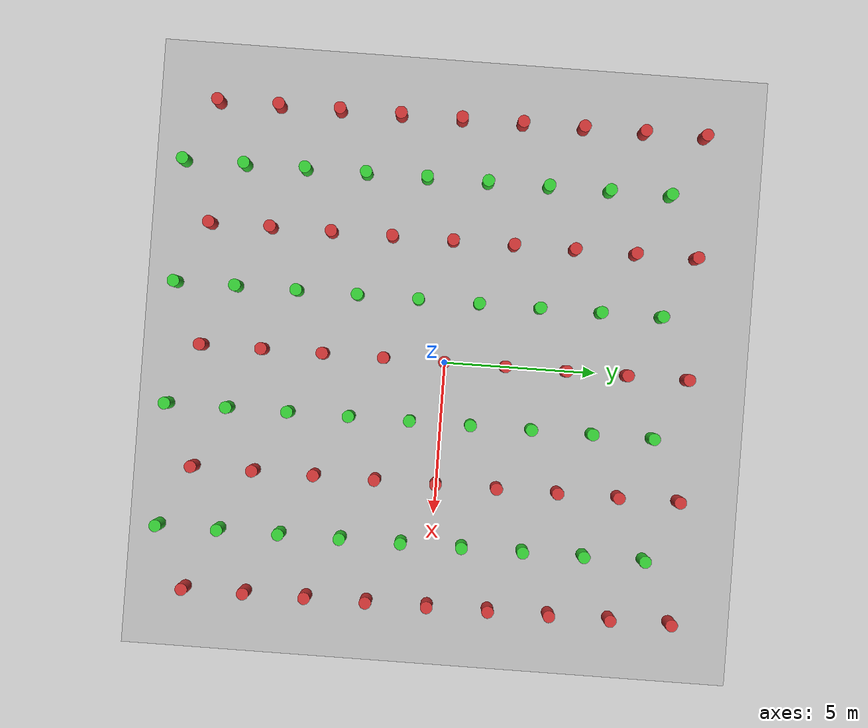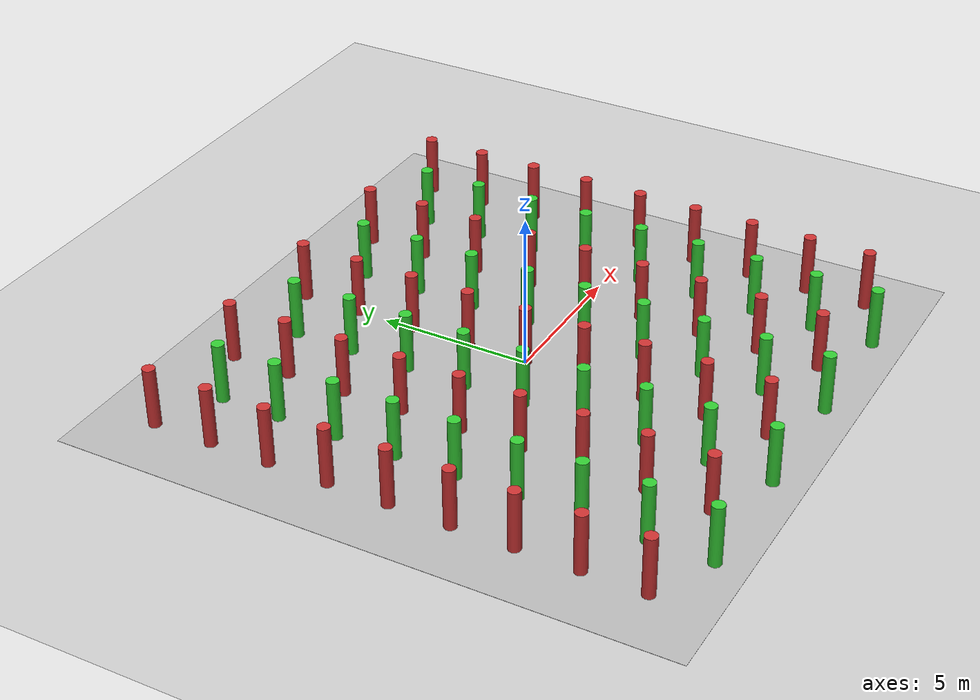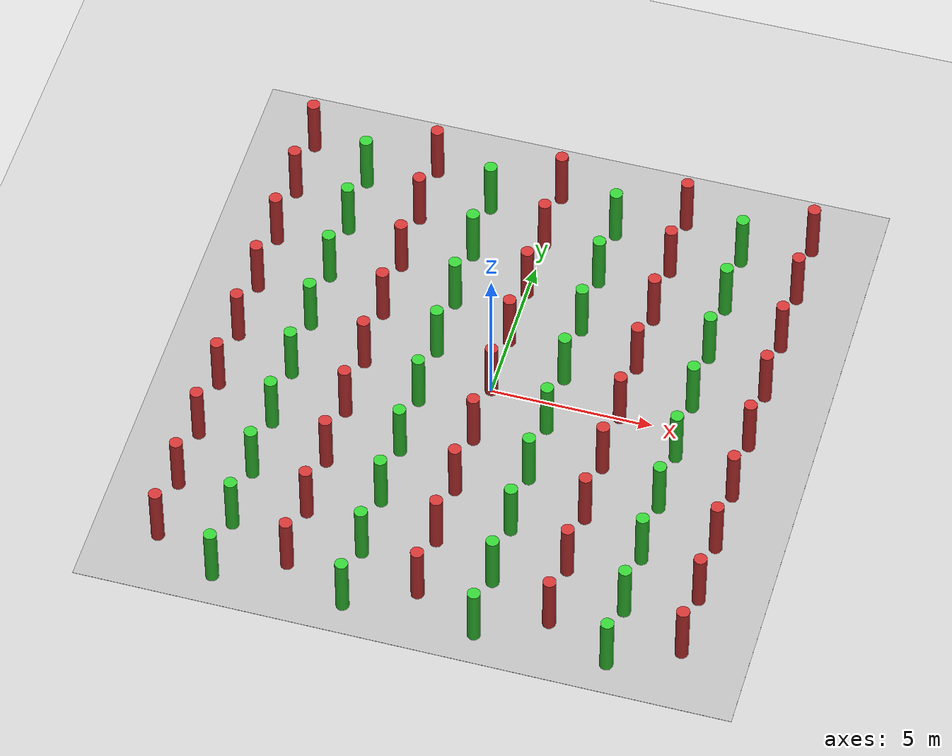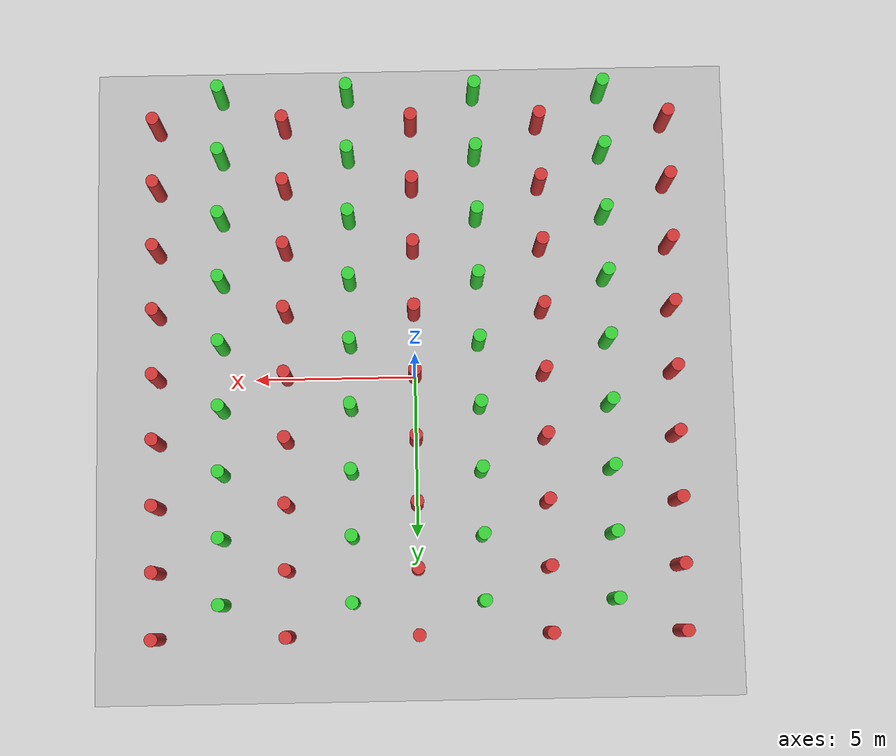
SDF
<sdf version="1.6">
 <world name="planning_test">
  <physics type="ode">
   <gravity>0 0 -9.8066</gravity>
   <ode>
    <solver>
     <type>quick</type>
     <iters>10</iters>
     <sor>1.3</sor>
     <use_dynamic_moi_rescaling>0</use_dynamic_moi_rescaling>
    </solver>
    <constraints>
     <cfm>0.00001</cfm>
     <erp>0.2</erp>
     <contact_max_correcting_vel>1000</contact_max_correcting_vel>
     <contact_surface_layer>0.01</contact_surface_layer>
    </constraints>
   </ode>
   <max_step_size>0.004</max_step_size>
   <real_time_factor>1.0</real_time_factor>
   <real_time_update_rate>250</real_time_update_rate>
   <magnetic_field>6.0e-6 2.3e-5 -4.2e-5</magnetic_field>
  </physics>
  <light type="directional" name="sun">
   <cast_shadows>false</cast_shadows>
   <pose>0 0 100 0 0 0</pose>
   <diffuse>0.8 0.8 0.8 1</diffuse>
   <specular>0.9 0.9 0.9 1</specular>
   <attenuation>
    <range>1000</range>
    <constant>0.9</constant>
    <linear>0.01</linear>
    <quadratic>0.001</quadratic>
   </attenuation>
   <direction>0.2 0.2 -0.9</direction>
  </light>
  <scene><shadows>0</shadows></scene>
  <include><uri>model://ground_plane</uri></include>
  <model name="yundrone_logo">
   <static>true</static>
   <link name="yundrone_logo">
    <visual name="visual">
     <cast_shadows>false</cast_shadows>
     <geometry><box><size>20.0 20.0 0.01</size></box></geometry>
     <material>
      <script><uri>model://yundrone_logo/yundrone_logo.material</uri><name>yundrone_logo</name></script>
     </material>
    </visual>
   </link>
  </model>
  <model name="cylinder_8_-8">
   <pose>8.0 -8.0 1.0 0 0 0</pose>
   <static>true</static>
   <link name="link">
    <collision name="collision">
     <geometry><cylinder><radius>0.2</radius><length>2.0</length></cylinder></geometry>
    </collision>
    <visual name="visual">
     <geometry><cylinder><radius>0.2</radius><length>2.0</length></cylinder></geometry>
     <material><ambient>0.8 0.2 0.2 1</ambient><diffuse>0.8 0.2 0.2 1</diffuse></material>
    </visual>
   </link>
  </model>
  <model name="cylinder_8_-6">
   <pose>8.0 -6.0 1.0 0 0 0</pose>
   <static>true</static>
   <link name="link">
    <collision name="collision">
     <geometry><cylinder><radius>0.2</radius><length>2.0</length></cylinder></geometry>
    </collision>
    <visual name="visual">
     <geometry><cylinder><radius>0.2</radius><length>2.0</length></cylinder></geometry>
     <material><ambient>0.8 0.2 0.2 1</ambient><diffuse>0.8 0.2 0.2 1</diffuse></material>
    </visual>
   </link>
  </model>
  <model name="cylinder_8_-4">
   <pose>8.0 -4.0 1.0 0 0 0</pose>
   <static>true</static>
   <link name="link">
    <collision name="collision">
     <geometry><cylinder><radius>0.2</radius><length>2.0</length></cylinder></geometry>
    </collision>
    <visual name="visual">
     <geometry><cylinder><radius>0.2</radius><length>2.0</length></cylinder></geometry>
     <material><ambient>0.8 0.2 0.2 1</ambient><diffuse>0.8 0.2 0.2 1</diffuse></material>
    </visual>
   </link>
  </model>
  <model name="cylinder_8_-2">
   <pose>8.0 -2.0 1.0 0 0 0</pose>
   <static>true</static>
   <link name="link">
    <collision name="collision">
     <geometry><cylinder><radius>0.2</radius><length>2.0</length></cylinder></geometry>
    </collision>
    <visual name="visual">
     <geometry><cylinder><radius>0.2</radius><length>2.0</length></cylinder></geometry>
     <material><ambient>0.8 0.2 0.2 1</ambient><diffuse>0.8 0.2 0.2 1</diffuse></material>
    </visual>
   </link>
  </model>
  <model name="cylinder_8_0">
   <pose>8.0 0.0 1.0 0 0 0</pose>
   <static>true</static>
   <link name="link">
    <collision name="collision">
     <geometry><cylinder><radius>0.2</radius><length>2.0</length></cylinder></geometry>
    </collision>
    <visual name="visual">
     <geometry><cylinder><radius>0.2</radius><length>2.0</length></cylinder></geometry>
     <material><ambient>0.8 0.2 0.2 1</ambient><diffuse>0.8 0.2 0.2 1</diffuse></material>
    </visual>
   </link>
  </model>
  <model name="cylinder_8_2">
   <pose>8.0 2.0 1.0 0 0 0</pose>
   <static>true</static>
   <link name="link">
    <collision name="collision">
     <geometry><cylinder><radius>0.2</radius><length>2.0</length></cylinder></geometry>
    </collision>
    <visual name="visual">
     <geometry><cylinder><radius>0.2</radius><length>2.0</length></cylinder></geometry>
     <material><ambient>0.8 0.2 0.2 1</ambient><diffuse>0.8 0.2 0.2 1</diffuse></material>
    </visual>
   </link>
  </model>
  <model name="cylinder_8_4">
   <pose>8.0 4.0 1.0 0 0 0</pose>
   <static>true</static>
   <link name="link">
    <collision name="collision">
     <geometry><cylinder><radius>0.2</radius><length>2.0</length></cylinder></geometry>
    </collision>
    <visual name="visual">
     <geometry><cylinder><radius>0.2</radius><length>2.0</length></cylinder></geometry>
     <material><ambient>0.8 0.2 0.2 1</ambient><diffuse>0.8 0.2 0.2 1</diffuse></material>
    </visual>
   </link>
  </model>
  <model name="cylinder_8_6">
   <pose>8.0 6.0 1.0 0 0 0</pose>
   <static>true</static>
   <link name="link">
    <collision name="collision">
     <geometry><cylinder><radius>0.2</radius><length>2.0</length></cylinder></geometry>
    </collision>
    <visual name="visual">
     <geometry><cylinder><radius>0.2</radius><length>2.0</length></cylinder></geometry>
     <material><ambient>0.8 0.2 0.2 1</ambient><diffuse>0.8 0.2 0.2 1</diffuse></material>
    </visual>
   </link>
  </model>
  <model name="cylinder_8_8">
   <pose>8.0 8.0 1.0 0 0 0</pose>
   <static>true</static>
   <link name="link">
    <collision name="collision">
     <geometry><cylinder><radius>0.2</radius><length>2.0</length></cylinder></geometry>
    </collision>
    <visual name="visual">
     <geometry><cylinder><radius>0.2</radius><length>2.0</length></cylinder></geometry>
     <material><ambient>0.8 0.2 0.2 1</ambient><diffuse>0.8 0.2 0.2 1</diffuse></material>
    </visual>
   </link>
  </model>
  <model name="cylinder_6_-9">
   <pose>6.0 -9.0 1.0 0 0 0</pose>
   <static>true</static>
   <link name="link">
    <collision name="collision">
     <geometry><cylinder><radius>0.2</radius><length>2.0</length></cylinder></geometry>
    </collision>
    <visual name="visual">
     <geometry><cylinder><radius>0.2</radius><length>2.0</length></cylinder></geometry>
     <material><ambient>0.2 0.8 0.2 1</ambient><diffuse>0.2 0.8 0.2 1</diffuse></material>
    </visual>
   </link>
  </model>
  <model name="cylinder_6_-7">
   <pose>6.0 -7.0 1.0 0 0 0</pose>
   <static>true</static>
   <link name="link">
    <collision name="collision">
     <geometry><cylinder><radius>0.2</radius><length>2.0</length></cylinder></geometry>
    </collision>
    <visual name="visual">
     <geometry><cylinder><radius>0.2</radius><length>2.0</length></cylinder></geometry>
     <material><ambient>0.2 0.8 0.2 1</ambient><diffuse>0.2 0.8 0.2 1</diffuse></material>
    </visual>
   </link>
  </model>
  <model name="cylinder_6_-5">
   <pose>6.0 -5.0 1.0 0 0 0</pose>
   <static>true</static>
   <link name="link">
    <collision name="collision">
     <geometry><cylinder><radius>0.2</radius><length>2.0</length></cylinder></geometry>
    </collision>
    <visual name="visual">
     <geometry><cylinder><radius>0.2</radius><length>2.0</length></cylinder></geometry>
     <material><ambient>0.2 0.8 0.2 1</ambient><diffuse>0.2 0.8 0.2 1</diffuse></material>
    </visual>
   </link>
  </model>
  <model name="cylinder_6_-3">
   <pose>6.0 -3.0 1.0 0 0 0</pose>
   <static>true</static>
   <link name="link">
    <collision name="collision">
     <geometry><cylinder><radius>0.2</radius><length>2.0</length></cylinder></geometry>
    </collision>
    <visual name="visual">
     <geometry><cylinder><radius>0.2</radius><length>2.0</length></cylinder></geometry>
     <material><ambient>0.2 0.8 0.2 1</ambient><diffuse>0.2 0.8 0.2 1</diffuse></material>
    </visual>
   </link>
  </model>
  <model name="cylinder_6_-1">
   <pose>6.0 -1.0 1.0 0 0 0</pose>
   <static>true</static>
   <link name="link">
    <collision name="collision">
     <geometry><cylinder><radius>0.2</radius><length>2.0</length></cylinder></geometry>
    </collision>
    <visual name="visual">
     <geometry><cylinder><radius>0.2</radius><length>2.0</length></cylinder></geometry>
     <material><ambient>0.2 0.8 0.2 1</ambient><diffuse>0.2 0.8 0.2 1</diffuse></material>
    </visual>
   </link>
  </model>
  <model name="cylinder_6_1">
   <pose>6.0 1.0 1.0 0 0 0</pose>
   <static>true</static>
   <link name="link">
    <collision name="collision">
     <geometry><cylinder><radius>0.2</radius><length>2.0</length></cylinder></geometry>
    </collision>
    <visual name="visual">
     <geometry><cylinder><radius>0.2</radius><length>2.0</length></cylinder></geometry>
     <material><ambient>0.2 0.8 0.2 1</ambient><diffuse>0.2 0.8 0.2 1</diffuse></material>
    </visual>
   </link>
  </model>
  <model name="cylinder_6_3">
   <pose>6.0 3.0 1.0 0 0 0</pose>
   <static>true</static>
   <link name="link">
    <collision name="collision">
     <geometry><cylinder><radius>0.2</radius><length>2.0</length></cylinder></geometry>
    </collision>
    <visual name="visual">
     <geometry><cylinder><radius>0.2</radius><length>2.0</length></cylinder></geometry>
     <material><ambient>0.2 0.8 0.2 1</ambient><diffuse>0.2 0.8 0.2 1</diffuse></material>
    </visual>
   </link>
  </model>
  <model name="cylinder_6_5">
   <pose>6.0 5.0 1.0 0 0 0</pose>
   <static>true</static>
   <link name="link">
    <collision name="collision">
     <geometry><cylinder><radius>0.2</radius><length>2.0</length></cylinder></geometry>
    </collision>
    <visual name="visual">
     <geometry><cylinder><radius>0.2</radius><length>2.0</length></cylinder></geometry>
     <material><ambient>0.2 0.8 0.2 1</ambient><diffuse>0.2 0.8 0.2 1</diffuse></material>
    </visual>
   </link>
  </model>
  <model name="cylinder_6_7">
   <pose>6.0 7.0 1.0 0 0 0</pose>
   <static>true</static>
   <link name="link">
    <collision name="collision">
     <geometry><cylinder><radius>0.2</radius><length>2.0</length></cylinder></geometry>
    </collision>
    <visual name="visual">
     <geometry><cylinder><radius>0.2</radius><length>2.0</length></cylinder></geometry>
     <material><ambient>0.2 0.8 0.2 1</ambient><diffuse>0.2 0.8 0.2 1</diffuse></material>
    </visual>
   </link>
  </model>
  <model name="cylinder_4_-8">
   <pose>4.0 -8.0 1.0 0 0 0</pose>
   <static>true</static>
   <link name="link">
    <collision name="collision">
     <geometry><cylinder><radius>0.2</radius><length>2.0</length></cylinder></geometry>
    </collision>
    <visual name="visual">
     <geometry><cylinder><radius>0.2</radius><length>2.0</length></cylinder></geometry>
     <material><ambient>0.8 0.2 0.2 1</ambient><diffuse>0.8 0.2 0.2 1</diffuse></material>
    </visual>
   </link>
  </model>
  <model name="cylinder_4_-6">
   <pose>4.0 -6.0 1.0 0 0 0</pose>
   <static>true</static>
   <link name="link">
    <collision name="collision">
     <geometry><cylinder><radius>0.2</radius><length>2.0</length></cylinder></geometry>
    </collision>
    <visual name="visual">
     <geometry><cylinder><radius>0.2</radius><length>2.0</length></cylinder></geometry>
     <material><ambient>0.8 0.2 0.2 1</ambient><diffuse>0.8 0.2 0.2 1</diffuse></material>
    </visual>
   </link>
  </model>
  <model name="cylinder_4_-4">
   <pose>4.0 -4.0 1.0 0 0 0</pose>
   <static>true</static>
   <link name="link">
    <collision name="collision">
     <geometry><cylinder><radius>0.2</radius><length>2.0</length></cylinder></geometry>
    </collision>
    <visual name="visual">
     <geometry><cylinder><radius>0.2</radius><length>2.0</length></cylinder></geometry>
     <material><ambient>0.8 0.2 0.2 1</ambient><diffuse>0.8 0.2 0.2 1</diffuse></material>
    </visual>
   </link>
  </model>
  <model name="cylinder_4_-2">
   <pose>4.0 -2.0 1.0 0 0 0</pose>
   <static>true</static>
   <link name="link">
    <collision name="collision">
     <geometry><cylinder><radius>0.2</radius><length>2.0</length></cylinder></geometry>
    </collision>
    <visual name="visual">
     <geometry><cylinder><radius>0.2</radius><length>2.0</length></cylinder></geometry>
     <material><ambient>0.8 0.2 0.2 1</ambient><diffuse>0.8 0.2 0.2 1</diffuse></material>
    </visual>
   </link>
  </model>
  <model name="cylinder_4_0">
   <pose>4.0 0.0 1.0 0 0 0</pose>
   <static>true</static>
   <link name="link">
    <collision name="collision">
     <geometry><cylinder><radius>0.2</radius><length>2.0</length></cylinder></geometry>
    </collision>
    <visual name="visual">
     <geometry><cylinder><radius>0.2</radius><length>2.0</length></cylinder></geometry>
     <material><ambient>0.8 0.2 0.2 1</ambient><diffuse>0.8 0.2 0.2 1</diffuse></material>
    </visual>
   </link>
  </model>
  <model name="cylinder_4_2">
   <pose>4.0 2.0 1.0 0 0 0</pose>
   <static>true</static>
   <link name="link">
    <collision name="collision">
     <geometry><cylinder><radius>0.2</radius><length>2.0</length></cylinder></geometry>
    </collision>
    <visual name="visual">
     <geometry><cylinder><radius>0.2</radius><length>2.0</length></cylinder></geometry>
     <material><ambient>0.8 0.2 0.2 1</ambient><diffuse>0.8 0.2 0.2 1</diffuse></material>
    </visual>
   </link>
  </model>
  <model name="cylinder_4_4">
   <pose>4.0 4.0 1.0 0 0 0</pose>
   <static>true</static>
   <link name="link">
    <collision name="collision">
     <geometry><cylinder><radius>0.2</radius><length>2.0</length></cylinder></geometry>
    </collision>
    <visual name="visual">
     <geometry><cylinder><radius>0.2</radius><length>2.0</length></cylinder></geometry>
     <material><ambient>0.8 0.2 0.2 1</ambient><diffuse>0.8 0.2 0.2 1</diffuse></material>
    </visual>
   </link>
  </model>
  <model name="cylinder_4_6">
   <pose>4.0 6.0 1.0 0 0 0</pose>
   <static>true</static>
   <link name="link">
    <collision name="collision">
     <geometry><cylinder><radius>0.2</radius><length>2.0</length></cylinder></geometry>
    </collision>
    <visual name="visual">
     <geometry><cylinder><radius>0.2</radius><length>2.0</length></cylinder></geometry>
     <material><ambient>0.8 0.2 0.2 1</ambient><diffuse>0.8 0.2 0.2 1</diffuse></material>
    </visual>
   </link>
  </model>
  <model name="cylinder_4_8">
   <pose>4.0 8.0 1.0 0 0 0</pose>
   <static>true</static>
   <link name="link">
    <collision name="collision">
     <geometry><cylinder><radius>0.2</radius><length>2.0</length></cylinder></geometry>
    </collision>
    <visual name="visual">
     <geometry><cylinder><radius>0.2</radius><length>2.0</length></cylinder></geometry>
     <material><ambient>0.8 0.2 0.2 1</ambient><diffuse>0.8 0.2 0.2 1</diffuse></material>
    </visual>
   </link>
  </model>
  <model name="cylinder_2_-9">
   <pose>2.0 -9.0 1.0 0 0 0</pose>
   <static>true</static>
   <link name="link">
    <collision name="collision">
     <geometry><cylinder><radius>0.2</radius><length>2.0</length></cylinder></geometry>
    </collision>
    <visual name="visual">
     <geometry><cylinder><radius>0.2</radius><length>2.0</length></cylinder></geometry>
     <material><ambient>0.2 0.8 0.2 1</ambient><diffuse>0.2 0.8 0.2 1</diffuse></material>
    </visual>
   </link>
  </model>
  <model name="cylinder_2_-7">
   <pose>2.0 -7.0 1.0 0 0 0</pose>
   <static>true</static>
   <link name="link">
    <collision name="collision">
     <geometry><cylinder><radius>0.2</radius><length>2.0</length></cylinder></geometry>
    </collision>
    <visual name="visual">
     <geometry><cylinder><radius>0.2</radius><length>2.0</length></cylinder></geometry>
     <material><ambient>0.2 0.8 0.2 1</ambient><diffuse>0.2 0.8 0.2 1</diffuse></material>
    </visual>
   </link>
  </model>
  <model name="cylinder_2_-5">
   <pose>2.0 -5.0 1.0 0 0 0</pose>
   <static>true</static>
   <link name="link">
    <collision name="collision">
     <geometry><cylinder><radius>0.2</radius><length>2.0</length></cylinder></geometry>
    </collision>
    <visual name="visual">
     <geometry><cylinder><radius>0.2</radius><length>2.0</length></cylinder></geometry>
     <material><ambient>0.2 0.8 0.2 1</ambient><diffuse>0.2 0.8 0.2 1</diffuse></material>
    </visual>
   </link>
  </model>
  <model name="cylinder_2_-3">
   <pose>2.0 -3.0 1.0 0 0 0</pose>
   <static>true</static>
   <link name="link">
    <collision name="collision">
     <geometry><cylinder><radius>0.2</radius><length>2.0</length></cylinder></geometry>
    </collision>
    <visual name="visual">
     <geometry><cylinder><radius>0.2</radius><length>2.0</length></cylinder></geometry>
     <material><ambient>0.2 0.8 0.2 1</ambient><diffuse>0.2 0.8 0.2 1</diffuse></material>
    </visual>
   </link>
  </model>
  <model name="cylinder_2_-1">
   <pose>2.0 -1.0 1.0 0 0 0</pose>
   <static>true</static>
   <link name="link">
    <collision name="collision">
     <geometry><cylinder><radius>0.2</radius><length>2.0</length></cylinder></geometry>
    </collision>
    <visual name="visual">
     <geometry><cylinder><radius>0.2</radius><length>2.0</length></cylinder></geometry>
     <material><ambient>0.2 0.8 0.2 1</ambient><diffuse>0.2 0.8 0.2 1</diffuse></material>
    </visual>
   </link>
  </model>
  <model name="cylinder_2_1">
   <pose>2.0 1.0 1.0 0 0 0</pose>
   <static>true</static>
   <link name="link">
    <collision name="collision">
     <geometry><cylinder><radius>0.2</radius><length>2.0</length></cylinder></geometry>
    </collision>
    <visual name="visual">
     <geometry><cylinder><radius>0.2</radius><length>2.0</length></cylinder></geometry>
     <material><ambient>0.2 0.8 0.2 1</ambient><diffuse>0.2 0.8 0.2 1</diffuse></material>
    </visual>
   </link>
  </model>
  <model name="cylinder_2_3">
   <pose>2.0 3.0 1.0 0 0 0</pose>
   <static>true</static>
   <link name="link">
    <collision name="collision">
     <geometry><cylinder><radius>0.2</radius><length>2.0</length></cylinder></geometry>
    </collision>
    <visual name="visual">
     <geometry><cylinder><radius>0.2</radius><length>2.0</length></cylinder></geometry>
     <material><ambient>0.2 0.8 0.2 1</ambient><diffuse>0.2 0.8 0.2 1</diffuse></material>
    </visual>
   </link>
  </model>
  <model name="cylinder_2_5">
   <pose>2.0 5.0 1.0 0 0 0</pose>
   <static>true</static>
   <link name="link">
    <collision name="collision">
     <geometry><cylinder><radius>0.2</radius><length>2.0</length></cylinder></geometry>
    </collision>
    <visual name="visual">
     <geometry><cylinder><radius>0.2</radius><length>2.0</length></cylinder></geometry>
     <material><ambient>0.2 0.8 0.2 1</ambient><diffuse>0.2 0.8 0.2 1</diffuse></material>
    </visual>
   </link>
  </model>
  <model name="cylinder_2_7">
   <pose>2.0 7.0 1.0 0 0 0</pose>
   <static>true</static>
   <link name="link">
    <collision name="collision">
     <geometry><cylinder><radius>0.2</radius><length>2.0</length></cylinder></geometry>
    </collision>
    <visual name="visual">
     <geometry><cylinder><radius>0.2</radius><length>2.0</length></cylinder></geometry>
     <material><ambient>0.2 0.8 0.2 1</ambient><diffuse>0.2 0.8 0.2 1</diffuse></material>
    </visual>
   </link>
  </model>
  <model name="cylinder_0_-8">
   <pose>0.0 -8.0 1.0 0 0 0</pose>
   <static>true</static>
   <link name="link">
    <collision name="collision">
     <geometry><cylinder><radius>0.2</radius><length>2.0</length></cylinder></geometry>
    </collision>
    <visual name="visual">
     <geometry><cylinder><radius>0.2</radius><length>2.0</length></cylinder></geometry>
     <material><ambient>0.8 0.2 0.2 1</ambient><diffuse>0.8 0.2 0.2 1</diffuse></material>
    </visual>
   </link>
  </model>
  <model name="cylinder_0_-6">
   <pose>0.0 -6.0 1.0 0 0 0</pose>
   <static>true</static>
   <link name="link">
    <collision name="collision">
     <geometry><cylinder><radius>0.2</radius><length>2.0</length></cylinder></geometry>
    </collision>
    <visual name="visual">
     <geometry><cylinder><radius>0.2</radius><length>2.0</length></cylinder></geometry>
     <material><ambient>0.8 0.2 0.2 1</ambient><diffuse>0.8 0.2 0.2 1</diffuse></material>
    </visual>
   </link>
  </model>
  <model name="cylinder_0_-4">
   <pose>0.0 -4.0 1.0 0 0 0</pose>
   <static>true</static>
   <link name="link">
    <collision name="collision">
     <geometry><cylinder><radius>0.2</radius><length>2.0</length></cylinder></geometry>
    </collision>
    <visual name="visual">
     <geometry><cylinder><radius>0.2</radius><length>2.0</length></cylinder></geometry>
     <material><ambient>0.8 0.2 0.2 1</ambient><diffuse>0.8 0.2 0.2 1</diffuse></material>
    </visual>
   </link>
  </model>
  <model name="cylinder_0_-2">
   <pose>0.0 -2.0 1.0 0 0 0</pose>
   <static>true</static>
   <link name="link">
    <collision name="collision">
     <geometry><cylinder><radius>0.2</radius><length>2.0</length></cylinder></geometry>
    </collision>
    <visual name="visual">
     <geometry><cylinder><radius>0.2</radius><length>2.0</length></cylinder></geometry>
     <material><ambient>0.8 0.2 0.2 1</ambient><diffuse>0.8 0.2 0.2 1</diffuse></material>
    </visual>
   </link>
  </model>
  <model name="cylinder_0_0">
   <pose>0.0 0.0 1.0 0 0 0</pose>
   <static>true</static>
   <link name="link">
    <collision name="collision">
     <geometry><cylinder><radius>0.2</radius><length>2.0</length></cylinder></geometry>
    </collision>
    <visual name="visual">
     <geometry><cylinder><radius>0.2</radius><length>2.0</length></cylinder></geometry>
     <material><ambient>0.8 0.2 0.2 1</ambient><diffuse>0.8 0.2 0.2 1</diffuse></material>
    </visual>
   </link>
  </model>
  <model name="cylinder_0_2">
   <pose>0.0 2.0 1.0 0 0 0</pose>
   <static>true</static>
   <link name="link">
    <collision name="collision">
     <geometry><cylinder><radius>0.2</radius><length>2.0</length></cylinder></geometry>
    </collision>
    <visual name="visual">
     <geometry><cylinder><radius>0.2</radius><length>2.0</length></cylinder></geometry>
     <material><ambient>0.8 0.2 0.2 1</ambient><diffuse>0.8 0.2 0.2 1</diffuse></material>
    </visual>
   </link>
  </model>
  <model name="cylinder_0_4">
   <pose>0.0 4.0 1.0 0 0 0</pose>
   <static>true</static>
   <link name="link">
    <collision name="collision">
     <geometry><cylinder><radius>0.2</radius><length>2.0</length></cylinder></geometry>
    </collision>
    <visual name="visual">
     <geometry><cylinder><radius>0.2</radius><length>2.0</length></cylinder></geometry>
     <material><ambient>0.8 0.2 0.2 1</ambient><diffuse>0.8 0.2 0.2 1</diffuse></material>
    </visual>
   </link>
  </model>
  <model name="cylinder_0_6">
   <pose>0.0 6.0 1.0 0 0 0</pose>
   <static>true</static>
   <link name="link">
    <collision name="collision">
     <geometry><cylinder><radius>0.2</radius><length>2.0</length></cylinder></geometry>
    </collision>
    <visual name="visual">
     <geometry><cylinder><radius>0.2</radius><length>2.0</length></cylinder></geometry>
     <material><ambient>0.8 0.2 0.2 1</ambient><diffuse>0.8 0.2 0.2 1</diffuse></material>
    </visual>
   </link>
  </model>
  <model name="cylinder_0_8">
   <pose>0.0 8.0 1.0 0 0 0</pose>
   <static>true</static>
   <link name="link">
    <collision name="collision">
     <geometry><cylinder><radius>0.2</radius><length>2.0</length></cylinder></geometry>
    </collision>
    <visual name="visual">
     <geometry><cylinder><radius>0.2</radius><length>2.0</length></cylinder></geometry>
     <material><ambient>0.8 0.2 0.2 1</ambient><diffuse>0.8 0.2 0.2 1</diffuse></material>
    </visual>
   </link>
  </model>
  <model name="cylinder_-2_-9">
   <pose>-2.0 -9.0 1.0 0 0 0</pose>
   <static>true</static>
   <link name="link">
    <collision name="collision">
     <geometry><cylinder><radius>0.2</radius><length>2.0</length></cylinder></geometry>
    </collision>
    <visual name="visual">
     <geometry><cylinder><radius>0.2</radius><length>2.0</length></cylinder></geometry>
     <material><ambient>0.2 0.8 0.2 1</ambient><diffuse>0.2 0.8 0.2 1</diffuse></material>
    </visual>
   </link>
  </model>
  <model name="cylinder_-2_-7">
   <pose>-2.0 -7.0 1.0 0 0 0</pose>
   <static>true</static>
   <link name="link">
    <collision name="collision">
     <geometry><cylinder><radius>0.2</radius><length>2.0</length></cylinder></geometry>
    </collision>
    <visual name="visual">
     <geometry><cylinder><radius>0.2</radius><length>2.0</length></cylinder></geometry>
     <material><ambient>0.2 0.8 0.2 1</ambient><diffuse>0.2 0.8 0.2 1</diffuse></material>
    </visual>
   </link>
  </model>
  <model name="cylinder_-2_-5">
   <pose>-2.0 -5.0 1.0 0 0 0</pose>
   <static>true</static>
   <link name="link">
    <collision name="collision">
     <geometry><cylinder><radius>0.2</radius><length>2.0</length></cylinder></geometry>
    </collision>
    <visual name="visual">
     <geometry><cylinder><radius>0.2</radius><length>2.0</length></cylinder></geometry>
     <material><ambient>0.2 0.8 0.2 1</ambient><diffuse>0.2 0.8 0.2 1</diffuse></material>
    </visual>
   </link>
  </model>
  <model name="cylinder_-2_-3">
   <pose>-2.0 -3.0 1.0 0 0 0</pose>
   <static>true</static>
   <link name="link">
    <collision name="collision">
     <geometry><cylinder><radius>0.2</radius><length>2.0</length></cylinder></geometry>
    </collision>
    <visual name="visual">
     <geometry><cylinder><radius>0.2</radius><length>2.0</length></cylinder></geometry>
     <material><ambient>0.2 0.8 0.2 1</ambient><diffuse>0.2 0.8 0.2 1</diffuse></material>
    </visual>
   </link>
  </model>
  <model name="cylinder_-2_-1">
   <pose>-2.0 -1.0 1.0 0 0 0</pose>
   <static>true</static>
   <link name="link">
    <collision name="collision">
     <geometry><cylinder><radius>0.2</radius><length>2.0</length></cylinder></geometry>
    </collision>
    <visual name="visual">
     <geometry><cylinder><radius>0.2</radius><length>2.0</length></cylinder></geometry>
     <material><ambient>0.2 0.8 0.2 1</ambient><diffuse>0.2 0.8 0.2 1</diffuse></material>
    </visual>
   </link>
  </model>
  <model name="cylinder_-2_1">
   <pose>-2.0 1.0 1.0 0 0 0</pose>
   <static>true</static>
   <link name="link">
    <collision name="collision">
     <geometry><cylinder><radius>0.2</radius><length>2.0</length></cylinder></geometry>
    </collision>
    <visual name="visual">
     <geometry><cylinder><radius>0.2</radius><length>2.0</length></cylinder></geometry>
     <material><ambient>0.2 0.8 0.2 1</ambient><diffuse>0.2 0.8 0.2 1</diffuse></material>
    </visual>
   </link>
  </model>
  <model name="cylinder_-2_3">
   <pose>-2.0 3.0 1.0 0 0 0</pose>
   <static>true</static>
   <link name="link">
    <collision name="collision">
     <geometry><cylinder><radius>0.2</radius><length>2.0</length></cylinder></geometry>
    </collision>
    <visual name="visual">
     <geometry><cylinder><radius>0.2</radius><length>2.0</length></cylinder></geometry>
     <material><ambient>0.2 0.8 0.2 1</ambient><diffuse>0.2 0.8 0.2 1</diffuse></material>
    </visual>
   </link>
  </model>
  <model name="cylinder_-2_5">
   <pose>-2.0 5.0 1.0 0 0 0</pose>
   <static>true</static>
   <link name="link">
    <collision name="collision">
     <geometry><cylinder><radius>0.2</radius><length>2.0</length></cylinder></geometry>
    </collision>
    <visual name="visual">
     <geometry><cylinder><radius>0.2</radius><length>2.0</length></cylinder></geometry>
     <material><ambient>0.2 0.8 0.2 1</ambient><diffuse>0.2 0.8 0.2 1</diffuse></material>
    </visual>
   </link>
  </model>
  <model name="cylinder_-2_7">
   <pose>-2.0 7.0 1.0 0 0 0</pose>
   <static>true</static>
   <link name="link">
    <collision name="collision">
     <geometry><cylinder><radius>0.2</radius><length>2.0</length></cylinder></geometry>
    </collision>
    <visual name="visual">
     <geometry><cylinder><radius>0.2</radius><length>2.0</length></cylinder></geometry>
     <material><ambient>0.2 0.8 0.2 1</ambient><diffuse>0.2 0.8 0.2 1</diffuse></material>
    </visual>
   </link>
  </model>
  <model name="cylinder_-4_-8">
   <pose>-4.0 -8.0 1.0 0 0 0</pose>
   <static>true</static>
   <link name="link">
    <collision name="collision">
     <geometry><cylinder><radius>0.2</radius><length>2.0</length></cylinder></geometry>
    </collision>
    <visual name="visual">
     <geometry><cylinder><radius>0.2</radius><length>2.0</length></cylinder></geometry>
     <material><ambient>0.8 0.2 0.2 1</ambient><diffuse>0.8 0.2 0.2 1</diffuse></material>
    </visual>
   </link>
  </model>
  <model name="cylinder_-4_-6">
   <pose>-4.0 -6.0 1.0 0 0 0</pose>
   <static>true</static>
   <link name="link">
    <collision name="collision">
     <geometry><cylinder><radius>0.2</radius><length>2.0</length></cylinder></geometry>
    </collision>
    <visual name="visual">
     <geometry><cylinder><radius>0.2</radius><length>2.0</length></cylinder></geometry>
     <material><ambient>0.8 0.2 0.2 1</ambient><diffuse>0.8 0.2 0.2 1</diffuse></material>
    </visual>
   </link>
  </model>
  <model name="cylinder_-4_-4">
   <pose>-4.0 -4.0 1.0 0 0 0</pose>
   <static>true</static>
   <link name="link">
    <collision name="collision">
     <geometry><cylinder><radius>0.2</radius><length>2.0</length></cylinder></geometry>
    </collision>
    <visual name="visual">
     <geometry><cylinder><radius>0.2</radius><length>2.0</length></cylinder></geometry>
     <material><ambient>0.8 0.2 0.2 1</ambient><diffuse>0.8 0.2 0.2 1</diffuse></material>
    </visual>
   </link>
  </model>
  <model name="cylinder_-4_-2">
   <pose>-4.0 -2.0 1.0 0 0 0</pose>
   <static>true</static>
   <link name="link">
    <collision name="collision">
     <geometry><cylinder><radius>0.2</radius><length>2.0</length></cylinder></geometry>
    </collision>
    <visual name="visual">
     <geometry><cylinder><radius>0.2</radius><length>2.0</length></cylinder></geometry>
     <material><ambient>0.8 0.2 0.2 1</ambient><diffuse>0.8 0.2 0.2 1</diffuse></material>
    </visual>
   </link>
  </model>
  <model name="cylinder_-4_0">
   <pose>-4.0 0.0 1.0 0 0 0</pose>
   <static>true</static>
   <link name="link">
    <collision name="collision">
     <geometry><cylinder><radius>0.2</radius><length>2.0</length></cylinder></geometry>
    </collision>
    <visual name="visual">
     <geometry><cylinder><radius>0.2</radius><length>2.0</length></cylinder></geometry>
     <material><ambient>0.8 0.2 0.2 1</ambient><diffuse>0.8 0.2 0.2 1</diffuse></material>
    </visual>
   </link>
  </model>
  <model name="cylinder_-4_2">
   <pose>-4.0 2.0 1.0 0 0 0</pose>
   <static>true</static>
   <link name="link">
    <collision name="collision">
     <geometry><cylinder><radius>0.2</radius><length>2.0</length></cylinder></geometry>
    </collision>
    <visual name="visual">
     <geometry><cylinder><radius>0.2</radius><length>2.0</length></cylinder></geometry>
     <material><ambient>0.8 0.2 0.2 1</ambient><diffuse>0.8 0.2 0.2 1</diffuse></material>
    </visual>
   </link>
  </model>
  <model name="cylinder_-4_4">
   <pose>-4.0 4.0 1.0 0 0 0</pose>
   <static>true</static>
   <link name="link">
    <collision name="collision">
     <geometry><cylinder><radius>0.2</radius><length>2.0</length></cylinder></geometry>
    </collision>
    <visual name="visual">
     <geometry><cylinder><radius>0.2</radius><length>2.0</length></cylinder></geometry>
     <material><ambient>0.8 0.2 0.2 1</ambient><diffuse>0.8 0.2 0.2 1</diffuse></material>
    </visual>
   </link>
  </model>
  <model name="cylinder_-4_6">
   <pose>-4.0 6.0 1.0 0 0 0</pose>
   <static>true</static>
   <link name="link">
    <collision name="collision">
     <geometry><cylinder><radius>0.2</radius><length>2.0</length></cylinder></geometry>
    </collision>
    <visual name="visual">
     <geometry><cylinder><radius>0.2</radius><length>2.0</length></cylinder></geometry>
     <material><ambient>0.8 0.2 0.2 1</ambient><diffuse>0.8 0.2 0.2 1</diffuse></material>
    </visual>
   </link>
  </model>
  <model name="cylinder_-4_8">
   <pose>-4.0 8.0 1.0 0 0 0</pose>
   <static>true</static>
   <link name="link">
    <collision name="collision">
     <geometry><cylinder><radius>0.2</radius><length>2.0</length></cylinder></geometry>
    </collision>
    <visual name="visual">
     <geometry><cylinder><radius>0.2</radius><length>2.0</length></cylinder></geometry>
     <material><ambient>0.8 0.2 0.2 1</ambient><diffuse>0.8 0.2 0.2 1</diffuse></material>
    </visual>
   </link>
  </model>
  <model name="cylinder_-6_-9">
   <pose>-6.0 -9.0 1.0 0 0 0</pose>
   <static>true</static>
   <link name="link">
    <collision name="collision">
     <geometry><cylinder><radius>0.2</radius><length>2.0</length></cylinder></geometry>
    </collision>
    <visual name="visual">
     <geometry><cylinder><radius>0.2</radius><length>2.0</length></cylinder></geometry>
     <material><ambient>0.2 0.8 0.2 1</ambient><diffuse>0.2 0.8 0.2 1</diffuse></material>
    </visual>
   </link>
  </model>
  <model name="cylinder_-6_-7">
   <pose>-6.0 -7.0 1.0 0 0 0</pose>
   <static>true</static>
   <link name="link">
    <collision name="collision">
     <geometry><cylinder><radius>0.2</radius><length>2.0</length></cylinder></geometry>
    </collision>
    <visual name="visual">
     <geometry><cylinder><radius>0.2</radius><length>2.0</length></cylinder></geometry>
     <material><ambient>0.2 0.8 0.2 1</ambient><diffuse>0.2 0.8 0.2 1</diffuse></material>
    </visual>
   </link>
  </model>
  <model name="cylinder_-6_-5">
   <pose>-6.0 -5.0 1.0 0 0 0</pose>
   <static>true</static>
   <link name="link">
    <collision name="collision">
     <geometry><cylinder><radius>0.2</radius><length>2.0</length></cylinder></geometry>
    </collision>
    <visual name="visual">
     <geometry><cylinder><radius>0.2</radius><length>2.0</length></cylinder></geometry>
     <material><ambient>0.2 0.8 0.2 1</ambient><diffuse>0.2 0.8 0.2 1</diffuse></material>
    </visual>
   </link>
  </model>
  <model name="cylinder_-6_-3">
   <pose>-6.0 -3.0 1.0 0 0 0</pose>
   <static>true</static>
   <link name="link">
    <collision name="collision">
     <geometry><cylinder><radius>0.2</radius><length>2.0</length></cylinder></geometry>
    </collision>
    <visual name="visual">
     <geometry><cylinder><radius>0.2</radius><length>2.0</length></cylinder></geometry>
     <material><ambient>0.2 0.8 0.2 1</ambient><diffuse>0.2 0.8 0.2 1</diffuse></material>
    </visual>
   </link>
  </model>
  <model name="cylinder_-6_-1">
   <pose>-6.0 -1.0 1.0 0 0 0</pose>
   <static>true</static>
   <link name="link">
    <collision name="collision">
     <geometry><cylinder><radius>0.2</radius><length>2.0</length></cylinder></geometry>
    </collision>
    <visual name="visual">
     <geometry><cylinder><radius>0.2</radius><length>2.0</length></cylinder></geometry>
     <material><ambient>0.2 0.8 0.2 1</ambient><diffuse>0.2 0.8 0.2 1</diffuse></material>
    </visual>
   </link>
  </model>
  <model name="cylinder_-6_1">
   <pose>-6.0 1.0 1.0 0 0 0</pose>
   <static>true</static>
   <link name="link">
    <collision name="collision">
     <geometry><cylinder><radius>0.2</radius><length>2.0</length></cylinder></geometry>
    </collision>
    <visual name="visual">
     <geometry><cylinder><radius>0.2</radius><length>2.0</length></cylinder></geometry>
     <material><ambient>0.2 0.8 0.2 1</ambient><diffuse>0.2 0.8 0.2 1</diffuse></material>
    </visual>
   </link>
  </model>
  <model name="cylinder_-6_3">
   <pose>-6.0 3.0 1.0 0 0 0</pose>
   <static>true</static>
   <link name="link">
    <collision name="collision">
     <geometry><cylinder><radius>0.2</radius><length>2.0</length></cylinder></geometry>
    </collision>
    <visual name="visual">
     <geometry><cylinder><radius>0.2</radius><length>2.0</length></cylinder></geometry>
     <material><ambient>0.2 0.8 0.2 1</ambient><diffuse>0.2 0.8 0.2 1</diffuse></material>
    </visual>
   </link>
  </model>
  <model name="cylinder_-6_5">
   <pose>-6.0 5.0 1.0 0 0 0</pose>
   <static>true</static>
   <link name="link">
    <collision name="collision">
     <geometry><cylinder><radius>0.2</radius><length>2.0</length></cylinder></geometry>
    </collision>
    <visual name="visual">
     <geometry><cylinder><radius>0.2</radius><length>2.0</length></cylinder></geometry>
     <material><ambient>0.2 0.8 0.2 1</ambient><diffuse>0.2 0.8 0.2 1</diffuse></material>
    </visual>
   </link>
  </model>
  <model name="cylinder_-6_7">
   <pose>-6.0 7.0 1.0 0 0 0</pose>
   <static>true</static>
   <link name="link">
    <collision name="collision">
     <geometry><cylinder><radius>0.2</radius><length>2.0</length></cylinder></geometry>
    </collision>
    <visual name="visual">
     <geometry><cylinder><radius>0.2</radius><length>2.0</length></cylinder></geometry>
     <material><ambient>0.2 0.8 0.2 1</ambient><diffuse>0.2 0.8 0.2 1</diffuse></material>
    </visual>
   </link>
  </model>
  <model name="cylinder_-8_-8">
   <pose>-8.0 -8.0 1.0 0 0 0</pose>
   <static>true</static>
   <link name="link">
    <collision name="collision">
     <geometry><cylinder><radius>0.2</radius><length>2.0</length></cylinder></geometry>
    </collision>
    <visual name="visual">
     <geometry><cylinder><radius>0.2</radius><length>2.0</length></cylinder></geometry>
     <material><ambient>0.8 0.2 0.2 1</ambient><diffuse>0.8 0.2 0.2 1</diffuse></material>
    </visual>
   </link>
  </model>
  <model name="cylinder_-8_-6">
   <pose>-8.0 -6.0 1.0 0 0 0</pose>
   <static>true</static>
   <link name="link">
    <collision name="collision">
     <geometry><cylinder><radius>0.2</radius><length>2.0</length></cylinder></geometry>
    </collision>
    <visual name="visual">
     <geometry><cylinder><radius>0.2</radius><length>2.0</length></cylinder></geometry>
     <material><ambient>0.8 0.2 0.2 1</ambient><diffuse>0.8 0.2 0.2 1</diffuse></material>
    </visual>
   </link>
  </model>
  <model name="cylinder_-8_-4">
   <pose>-8.0 -4.0 1.0 0 0 0</pose>
   <static>true</static>
   <link name="link">
    <collision name="collision">
     <geometry><cylinder><radius>0.2</radius><length>2.0</length></cylinder></geometry>
    </collision>
    <visual name="visual">
     <geometry><cylinder><radius>0.2</radius><length>2.0</length></cylinder></geometry>
     <material><ambient>0.8 0.2 0.2 1</ambient><diffuse>0.8 0.2 0.2 1</diffuse></material>
    </visual>
   </link>
  </model>
  <model name="cylinder_-8_-2">
   <pose>-8.0 -2.0 1.0 0 0 0</pose>
   <static>true</static>
   <link name="link">
    <collision name="collision">
     <geometry><cylinder><radius>0.2</radius><length>2.0</length></cylinder></geometry>
    </collision>
    <visual name="visual">
     <geometry><cylinder><radius>0.2</radius><length>2.0</length></cylinder></geometry>
     <material><ambient>0.8 0.2 0.2 1</ambient><diffuse>0.8 0.2 0.2 1</diffuse></material>
    </visual>
   </link>
  </model>
  <model name="cylinder_-8_0">
   <pose>-8.0 0.0 1.0 0 0 0</pose>
   <static>true</static>
   <link name="link">
    <collision name="collision">
     <geometry><cylinder><radius>0.2</radius><length>2.0</length></cylinder></geometry>
    </collision>
    <visual name="visual">
     <geometry><cylinder><radius>0.2</radius><length>2.0</length></cylinder></geometry>
     <material><ambient>0.8 0.2 0.2 1</ambient><diffuse>0.8 0.2 0.2 1</diffuse></material>
    </visual>
   </link>
  </model>
  <model name="cylinder_-8_2">
   <pose>-8.0 2.0 1.0 0 0 0</pose>
   <static>true</static>
   <link name="link">
    <collision name="collision">
     <geometry><cylinder><radius>0.2</radius><length>2.0</length></cylinder></geometry>
    </collision>
    <visual name="visual">
     <geometry><cylinder><radius>0.2</radius><length>2.0</length></cylinder></geometry>
     <material><ambient>0.8 0.2 0.2 1</ambient><diffuse>0.8 0.2 0.2 1</diffuse></material>
    </visual>
   </link>
  </model>
  <model name="cylinder_-8_4">
   <pose>-8.0 4.0 1.0 0 0 0</pose>
   <static>true</static>
   <link name="link">
    <collision name="collision">
     <geometry><cylinder><radius>0.2</radius><length>2.0</length></cylinder></geometry>
    </collision>
    <visual name="visual">
     <geometry><cylinder><radius>0.2</radius><length>2.0</length></cylinder></geometry>
     <material><ambient>0.8 0.2 0.2 1</ambient><diffuse>0.8 0.2 0.2 1</diffuse></material>
    </visual>
   </link>
  </model>
  <model name="cylinder_-8_6">
   <pose>-8.0 6.0 1.0 0 0 0</pose>
   <static>true</static>
   <link name="link">
    <collision name="collision">
     <geometry><cylinder><radius>0.2</radius><length>2.0</length></cylinder></geometry>
    </collision>
    <visual name="visual">
     <geometry><cylinder><radius>0.2</radius><length>2.0</length></cylinder></geometry>
     <material><ambient>0.8 0.2 0.2 1</ambient><diffuse>0.8 0.2 0.2 1</diffuse></material>
    </visual>
   </link>
  </model>
  <model name="cylinder_-8_8">
   <pose>-8.0 8.0 1.0 0 0 0</pose>
   <static>true</static>
   <link name="link">
    <collision name="collision">
     <geometry><cylinder><radius>0.2</radius><length>2.0</length></cylinder></geometry>
    </collision>
    <visual name="visual">
     <geometry><cylinder><radius>0.2</radius><length>2.0</length></cylinder></geometry>
     <material><ambient>0.8 0.2 0.2 1</ambient><diffuse>0.8 0.2 0.2 1</diffuse></material>
    </visual>
   </link>
  </model>
 </world>
</sdf>
